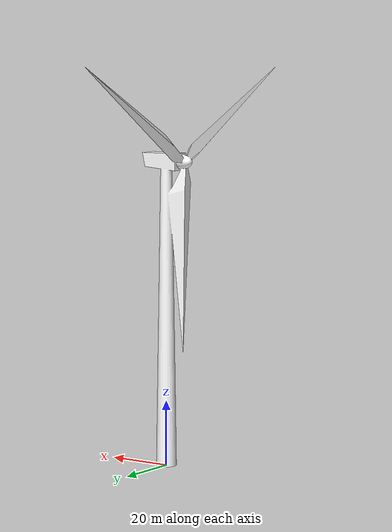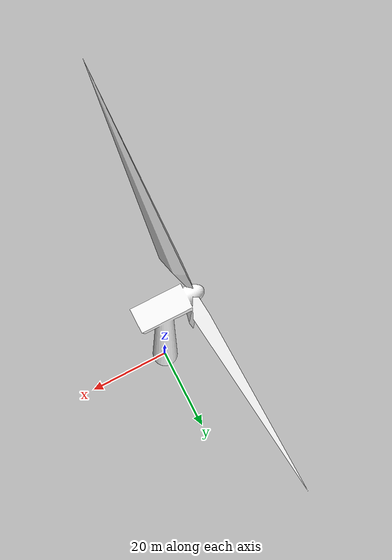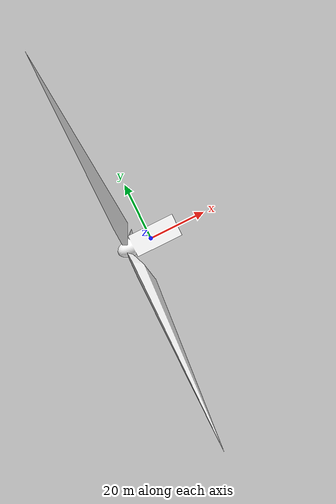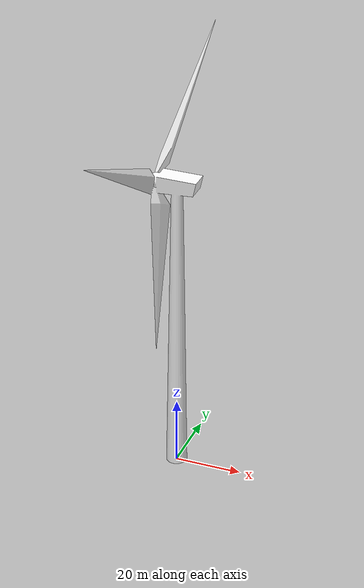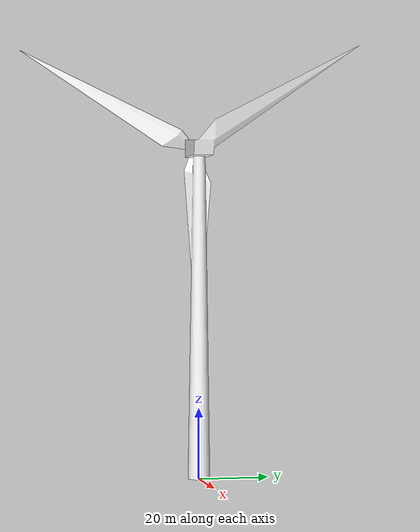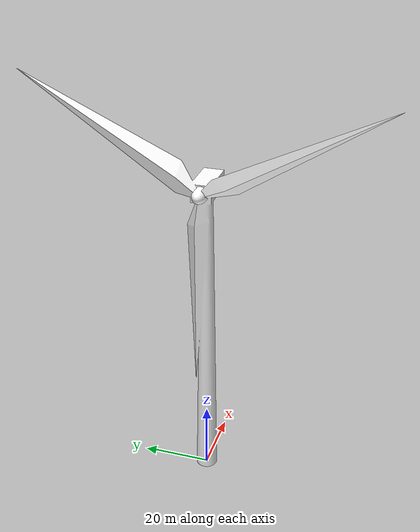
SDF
<sdf version="1.5">
  <model name="my_model">

    <static>true</static>
    <link name="link">
        <pose>0 0 0 1.57 0 0</pose>
        <inertial>
            <mass>1.0</mass>
            <inertia> <!-- inertias are tricky to compute -->
            <!-- http://gazebosim.org/tutorials?tut=inertia&cat=build_robot -->
            <ixx>0.083</ixx>       <!-- for a box: ixx = 0.083 * mass * (y*y + z*z) -->
            <ixy>0.0</ixy>         <!-- for a box: ixy = 0 -->
            <ixz>0.0</ixz>         <!-- for a box: ixz = 0 -->
            <iyy>0.083</iyy>       <!-- for a box: iyy = 0.083 * mass * (x*x + z*z) -->
            <iyz>0.0</iyz>         <!-- for a box: iyz = 0 -->
            <izz>0.083</izz>       <!-- for a box: izz = 0.083 * mass * (x*x + y*y) -->
            </inertia>
        </inertial>
        <collision name="collision">
        <geometry>
          <mesh>
            <uri>model://wind_turbine/meshes/wind_turbine.dae</uri>
            <scale>12 12 12</scale>
          </mesh>
        </geometry>
      </collision>
        <visual name="visual">
          <geometry>

            <mesh>

              <uri>model://wind_turbine/meshes/wind_turbine.dae</uri>
              <scale>12 12 12</scale>
            </mesh>

          </geometry>
          <material>
            <ambient>1 1 1 1</ambient>
            <diffuse>1 1 1 1</diffuse>
            <specular>0 0 0 0</specular>
            <emissive>0 0 0 1</emissive>
          </material>
        </visual>
    </link>
  </model>
</sdf>
